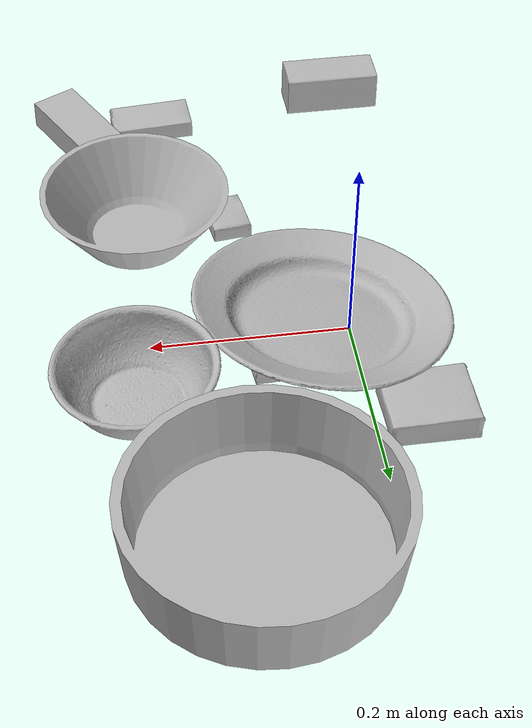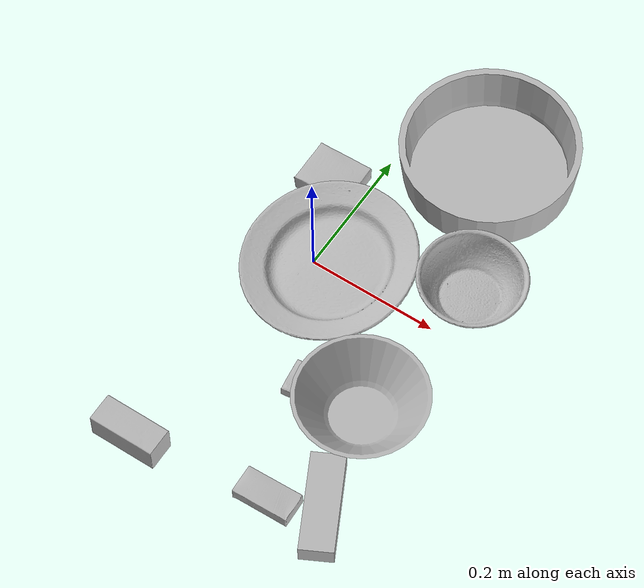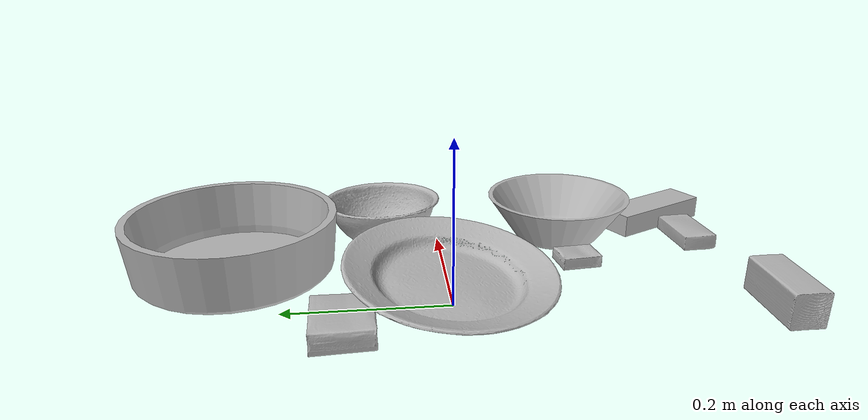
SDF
<sdf version="1.4">
  <world name="default">
    <light name="light1" type="point">
      <pose>0 0 1 0 0 0</pose>
      <diffuse>3 3 3 1</diffuse>
      <specular>3 3 3 1</specular>
    </light>
    <light name="light2" type="point">
      <pose>0 0.5 2 0 0 0</pose>
      <diffuse>1 1 1 1</diffuse>
      <specular>1 1 1 1</specular>
    </light>
    <light name="light3" type="point">
      <pose>0 0.5 2 0 0 0</pose>
      <diffuse>3 3 3 1</diffuse>
      <specular>3 3 3 1</specular>
    </light>
    <scene>
      <ambient>0.7 0.7 0.7</ambient>
    </scene>
    <model name="box1">
      <link name="link_box1">
        <collision name="default">
          <geometry>
            <mesh>
              <uri>model://jenga/collision_meshes/collision.obj</uri>
              <scale>1.0 1.0 1.0</scale>
            </mesh>
          </geometry>
          <surface>
            <friction>
              <ode>
                <mu>0.5</mu>
                <mu2>0.5</mu2>
              </ode>
            </friction>
          <contact>
        <ode>
            <max_vel>0</max_vel>
            <min_depth>0.0001</min_depth>
            <kp>1e8</kp>
        </ode>
    </contact></surface>
        </collision>
        <visual name="default">
          <geometry>
            <mesh>
              <uri>model://jenga/visual_meshes/visual.dae</uri>
              <scale>1.0 1.0 1.0</scale>
            </mesh>
          </geometry>
        </visual>
        <inertial>
          <mass>0.24226053059101105</mass>
          <pose>-2.502855807051674e-07 -0.0001025000965455547 -4.092339804628864e-05 0.0 -7.34215461761844e-07 0.0</pose>
          <inertia>
            <ixx>6.703936e-05</ixx>
            <iyy>0.0004542569</iyy>
            <izz>0.00048495785</izz>
            <ixy>0</ixy>
            <ixz>0</ixz>
            <iyz>0</iyz>
          </inertia>
        </inertial>
      </link>
      <pose>0.23426687717437744 -0.3231702148914337 0.014999998733401299 4.629603147291248e-08 7.443318478079701e-09 2.0490349865186586</pose>
    </model>
    <model name="box11">
      <link name="link_box11">
        <collision name="default">
          <geometry>
            <mesh>
              <uri>model://sugar_box/collision_meshes/collision.obj</uri>
              <scale>0.5 0.5 0.5</scale>
            </mesh>
          </geometry>
          <surface>
            <friction>
              <ode>
                <mu>0.5</mu>
                <mu2>0.5</mu2>
              </ode>
            </friction>
          <contact>
        <ode>
            <max_vel>0</max_vel>
            <min_depth>0.0001</min_depth>
            <kp>1e8</kp>
        </ode>
    </contact></surface>
        </collision>
        <visual name="default">
          <geometry>
            <mesh>
              <uri>model://sugar_box/visual_meshes/visual.dae</uri>
              <scale>0.5 0.5 0.5</scale>
            </mesh>
          </geometry>
        </visual>
        <inertial>
          <mass>0.06204606965184212</mass>
          <pose>0.0005171863595023751 1.9245549992774613e-05 -0.00018182402709499002 -0.0004046263588767038 0.0010506634057764815 0.0026153785560837986</pose>
          <inertia>
            <ixx>1.2924152e-05</ixx>
            <iyy>4.1773517e-05</iyy>
            <izz>5.0007893e-05</izz>
            <ixy>0</ixy>
            <ixz>0</ixz>
            <iyz>0</iyz>
          </inertia>
        </inertial>
      </link>
      <pose>0.16195809841156006 -0.34988507628440857 0.011399303562939167 0.0007745289844290463 -0.023433001973108155 -3.100966565129048</pose>
    </model>
    <model name="box2">
      <link name="link_box2">
        <collision name="default">
          <geometry>
            <mesh>
              <uri>model://gelatin_box/collision_meshes/collision.obj</uri>
              <scale>1.0 1.0 1.0</scale>
            </mesh>
          </geometry>
          <surface>
            <friction>
              <ode>
                <mu>0.5</mu>
                <mu2>0.5</mu2>
              </ode>
            </friction>
          <contact>
        <ode>
            <max_vel>0</max_vel>
            <min_depth>0.0001</min_depth>
            <kp>1e8</kp>
        </ode>
    </contact></surface>
        </collision>
        <visual name="default">
          <geometry>
            <mesh>
              <uri>model://gelatin_box/visual_meshes/visual.dae</uri>
              <scale>1.0 1.0 1.0</scale>
            </mesh>
          </geometry>
        </visual>
        <inertial>
          <mass>0.13706544041633606</mass>
          <pose>0.000431961816502735 0.00011156871187267825 -0.0003640321083366871 -0.0010503719975702072 -0.0047558196187974565 0.01644056506069309</pose>
          <inertia>
            <ixx>9.675702e-05</ixx>
            <iyy>6.911303e-05</iyy>
            <izz>0.00014728573</izz>
            <ixy>0</ixy>
            <ixz>0</ixz>
            <iyz>0</iyz>
          </inertia>
        </inertial>
      </link>
      <pose>-0.05189346522092819 0.1262216717004776 0.015168310143053532 0.005597382038154521 -0.0073044872017051675 -1.5637250246417502</pose>
    </model>
    <model name="box21">
      <link name="link_box21">
        <collision name="default">
          <geometry>
            <mesh>
              <uri>model://pudding_box/collision_meshes/collision.obj</uri>
              <scale>0.5 0.5 0.5</scale>
            </mesh>
          </geometry>
          <surface>
            <friction>
              <ode>
                <mu>0.5</mu>
                <mu2>0.5</mu2>
              </ode>
            </friction>
          <contact>
        <ode>
            <max_vel>0</max_vel>
            <min_depth>0.0001</min_depth>
            <kp>1e8</kp>
        </ode>
    </contact></surface>
        </collision>
        <visual name="default">
          <geometry>
            <mesh>
              <uri>model://pudding_box/visual_meshes/visual.dae</uri>
              <scale>0.5 0.5 0.5</scale>
            </mesh>
          </geometry>
        </visual>
        <inertial>
          <mass>0.041178666055202484</mass>
          <pose>0.00024474109522998333 0.00040339428232982755 -0.00025944141088984907 0.005213101335872514 -0.006603799630434185 0.020079819569992066</pose>
          <inertia>
            <ixx>1.163759e-05</ixx>
            <iyy>7.8298535e-06</iyy>
            <izz>1.7185945e-05</izz>
            <ixy>0</ixy>
            <ixz>0</ixz>
            <iyz>0</iyz>
          </inertia>
        </inertial>
      </link>
      <pose>0.07872708886861801 0.04246588051319122 0.009972325526177883 0.037229266476725593 0.002125508531721603 -1.481126397867284</pose>
    </model>
    <model name="box3">
      <link name="link_box3">
        <collision name="default">
          <geometry>
            <mesh>
              <uri>model://cracker_box/collision_meshes/collision.obj</uri>
              <scale>0.25 0.25 0.25</scale>
            </mesh>
          </geometry>
          <surface>
            <friction>
              <ode>
                <mu>0.5</mu>
                <mu2>0.5</mu2>
              </ode>
            </friction>
          <contact>
        <ode>
            <max_vel>0</max_vel>
            <min_depth>0.0001</min_depth>
            <kp>1e8</kp>
        </ode>
    </contact></surface>
        </collision>
        <visual name="default">
          <geometry>
            <mesh>
              <uri>model://cracker_box/visual_meshes/visual.dae</uri>
              <scale>0.25 0.25 0.25</scale>
            </mesh>
          </geometry>
        </visual>
        <inertial>
          <mass>0.02017100155353546</mass>
          <pose>0.00023660367878619581 6.358561222441494e-05 -0.00042573839891701937 -0.0003162077973682912 -0.011106487737506417 0.0025467945369474112</pose>
          <inertia>
            <ixx>3.2066264e-06</ixx>
            <iyy>5.2947703e-06</iyy>
            <izz>7.556123e-06</izz>
            <ixy>0</ixy>
            <ixz>0</ixz>
            <iyz>0</iyz>
          </inertia>
        </inertial>
      </link>
      <pose>0.09960071742534637 -0.17498616874217987 0.009096024557948112 -0.01405058395305887 -0.0050165620941271805 1.6995307489641578</pose>
    </model>
    <model name="box31">
      <link name="link_box31">
        <collision name="default">
          <geometry>
            <mesh>
              <uri>model://wood_block/collision_meshes/collision.obj</uri>
              <scale>0.5 0.5 0.5</scale>
            </mesh>
          </geometry>
          <surface>
            <friction>
              <ode>
                <mu>0.5</mu>
                <mu2>0.5</mu2>
              </ode>
            </friction>
          <contact>
        <ode>
            <max_vel>0</max_vel>
            <min_depth>0.0001</min_depth>
            <kp>1e8</kp>
        </ode>
    </contact></surface>
        </collision>
        <visual name="default">
          <geometry>
            <mesh>
              <uri>model://wood_block/visual_meshes/visual.dae</uri>
              <scale>0.5 0.5 0.5</scale>
            </mesh>
          </geometry>
        </visual>
        <inertial>
          <mass>0.1962708830833435</mass>
          <pose>-2.9066577553749084e-06 -0.000285404734313488 0.00013204291462898254 -0.05220969561834339 -0.0051926963065425085 -0.006861379449261536</pose>
          <inertia>
            <ixx>6.566003e-05</ixx>
            <iyy>0.00020742005</iyy>
            <izz>0.00020664421</izz>
            <ixy>0</ixy>
            <ixz>0</ixz>
            <iyz>0</iyz>
          </inertia>
        </inertial>
      </link>
      <pose>-0.0482177771627903 -0.37796810269355774 0.022629253566265106 -0.0052084090142969965 0.005718656938496508 -3.136566044462148</pose>
    </model>
    <model name="plate1">
      <link name="link_plate1">
        <collision name="default">
          <geometry>
            <mesh>
              <uri>model://plate/collision_meshes/collision.obj</uri>
              <scale>1.0 1.0 1.0</scale>
            </mesh>
          </geometry>
          <surface>
            <friction>
              <ode>
                <mu>0.5</mu>
                <mu2>0.5</mu2>
              </ode>
            </friction>
          <contact>
        <ode>
            <max_vel>0</max_vel>
            <min_depth>0.0001</min_depth>
            <kp>1e8</kp>
        </ode>
    </contact></surface>
        </collision>
        <visual name="default">
          <geometry>
            <mesh>
              <uri>model://plate/visual_meshes/visual.dae</uri>
              <scale>1.0 1.0 1.0</scale>
            </mesh>
          </geometry>
        </visual>
        <inertial>
          <mass>0.17345036566257477</mass>
          <pose>-0.0006044625188224018 0.00027825802681036294 -0.0010561991948634386 0.0022187574415082918 -0.0032254973035065115 0.4526175972404713</pose>
          <inertia>
            <ixx>0.00081140426</ixx>
            <iyy>0.0008036436</iyy>
            <izz>0.0015869853</izz>
            <ixy>0</ixy>
            <ixz>0</ixz>
            <iyz>0</iyz>
          </inertia>
        </inertial>
      </link>
      <pose>0.028988374397158623 -0.0004719973949249834 0.024738287553191185 0.023307928430582565 0.14946273273757726 -2.2292103442832394</pose>
    </model>
    <model name="bowl1">
      <link name="link_bowl1">
        <collision name="default">
          <geometry>
            <mesh>
              <uri>model://bowl/collision_meshes/collision.obj</uri>
              <scale>1.0 1.0 1.0</scale>
            </mesh>
          </geometry>
          <surface>
            <friction>
              <ode>
                <mu>0.5</mu>
                <mu2>0.5</mu2>
              </ode>
            </friction>
          <contact>
        <ode>
            <max_vel>0</max_vel>
            <min_depth>0.0001</min_depth>
            <kp>1e8</kp>
        </ode>
    </contact></surface>
        </collision>
        <visual name="default">
          <geometry>
            <mesh>
              <uri>model://bowl/visual_meshes/visual.dae</uri>
              <scale>1.0 1.0 1.0</scale>
            </mesh>
          </geometry>
        </visual>
        <inertial>
          <mass>0.11633910983800888</mass>
          <pose>0.00020445004338398576 -0.0010302083101123571 -0.0008042659610509872 -0.01576420252076368 0.01454664289610389 0.7140315541596068</pose>
          <inertia>
            <ixx>0.0002672402</ixx>
            <iyy>0.000261269</iyy>
            <izz>0.00044958986</izz>
            <ixy>0</ixy>
            <ixz>0</ixz>
            <iyz>0</iyz>
          </inertia>
        </inertial>
      </link>
      <pose>0.21949298679828644 0.07494264096021652 0.029586099088191986 0.037978879805260435 -0.01964958805976416 2.490976308507107</pose>
    </model>
    <model name="plate2">
      <link name="link_plate2">
        <collision name="default">
          <geometry>
            <mesh>
              <uri>model://pan_tefal/collision_meshes/collision.obj</uri>
              <scale>1.0 1.0 1.0</scale>
            </mesh>
          </geometry>
          <surface>
            <friction>
              <ode>
                <mu>0.5</mu>
                <mu2>0.5</mu2>
              </ode>
            </friction>
          <contact>
        <ode>
            <max_vel>0</max_vel>
            <min_depth>0.0001</min_depth>
            <kp>1e8</kp>
        </ode>
    </contact></surface>
        </collision>
        <visual name="default">
          <geometry>
            <mesh>
              <uri>model://pan_tefal/visual_meshes/visual.dae</uri>
              <scale>1.0 1.0 1.0</scale>
            </mesh>
          </geometry>
        </visual>
        <inertial>
          <mass>0.6251956820487976</mass>
          <pose>-0.00018002417345996946 3.279016891610809e-05 -0.00851493515074253 0.0008190253681579672 -0.00033013925853852665 -0.331857454583129</pose>
          <inertia>
            <ixx>0.004315697</ixx>
            <iyy>0.00434352</iyy>
            <izz>0.007944365</izz>
            <ixy>0</ixy>
            <ixz>0</ixz>
            <iyz>0</iyz>
          </inertia>
        </inertial>
      </link>
      <pose>0.1267993301153183 0.2665313184261322 0.038050007075071335 2.2851312938397313e-08 2.235846170753606e-08 2.8342614283891283</pose>
    </model>
    <model name="bowl2">
      <link name="link_bowl2">
        <collision name="default">
          <geometry>
            <mesh>
              <uri>model://bowl_a/collision_meshes/collision.obj</uri>
              <scale>1.0 1.0 1.0</scale>
            </mesh>
          </geometry>
          <surface>
            <friction>
              <ode>
                <mu>0.5</mu>
                <mu2>0.5</mu2>
              </ode>
            </friction>
          <contact>
        <ode>
            <max_vel>0</max_vel>
            <min_depth>0.0001</min_depth>
            <kp>1e8</kp>
        </ode>
    </contact></surface>
        </collision>
        <visual name="default">
          <geometry>
            <mesh>
              <uri>model://bowl_a/visual_meshes/visual.dae</uri>
              <scale>1.0 1.0 1.0</scale>
            </mesh>
          </geometry>
        </visual>
        <inertial>
          <mass>0.3434441387653351</mass>
          <pose>0.0002786742115858942 4.731103399535641e-05 -0.0013765294570475817 -0.000980532155977885 -0.0010938290454026757 -0.191241060811112</pose>
          <inertia>
            <ixx>0.0009778013</ixx>
            <iyy>0.0009838042</iyy>
            <izz>0.0017390571</izz>
            <ixy>0</ixy>
            <ixz>0</ixz>
            <iyz>0</iyz>
          </inertia>
        </inertial>
      </link>
      <pose>0.19634968042373657 -0.17141616344451904 0.030383005738258362 -1.7146533667039446e-08 1.0656517527961705e-08 -0.5483794276554833</pose>
    </model>
  <physics type="ode">
      <max_contacts>50</max_contacts>
      <ode>
        <solver>
          <type>quick</type>
          <iters>75</iters>
        </solver>
        <constraints>
          <contact_max_correcting_vel>0</contact_max_correcting_vel>
          <contact_surface_layer>0</contact_surface_layer>
        </constraints>
      </ode>
    </physics></world>
</sdf>
